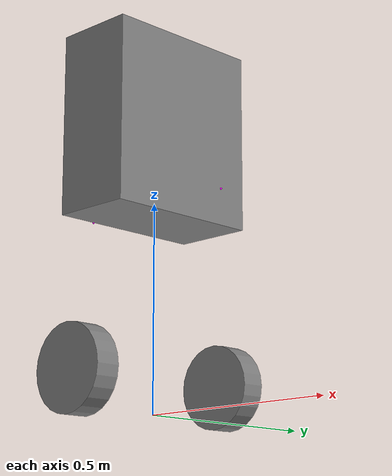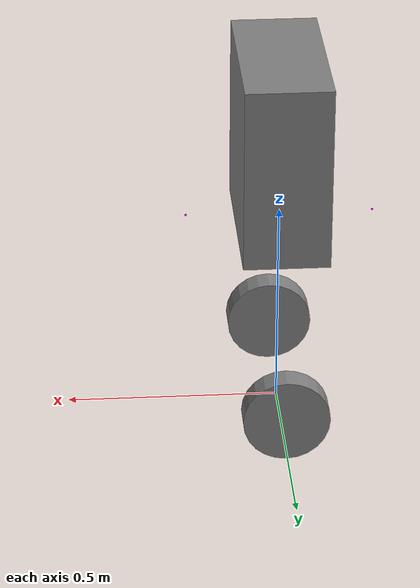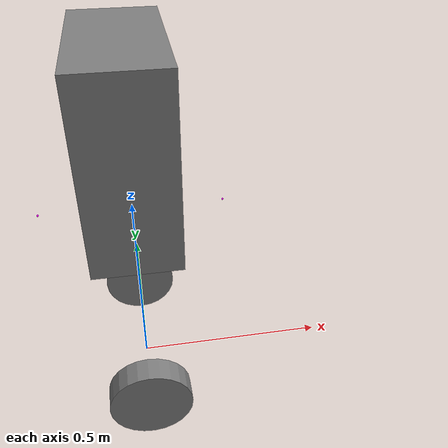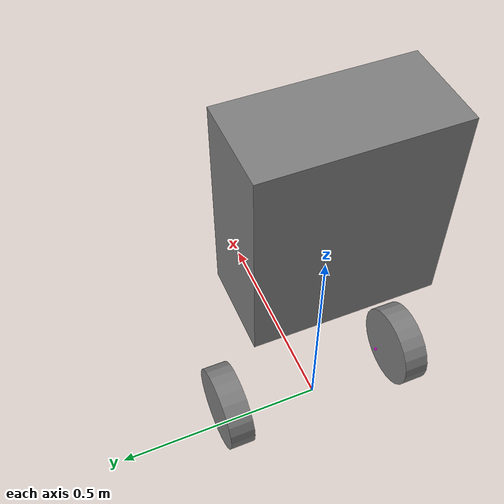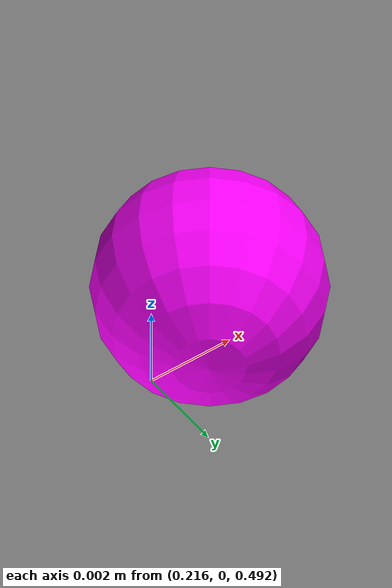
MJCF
<mujoco model="robot">
  <default>
    <default class="robot/"/>
    </default>
  <worldbody>
    <body name="body_chassis_" pos="0 0 0.67390000000000005" euler="0 0 0">
      <camera name="camera_track_chassis_" class="robot/" mode="track" pos="0 -3 1" zaxis="0 -1 0.5"/>
      <geom name="geom_chassis_" class="robot/" type="box" size="0.10000000000000001 0.20000000000000001 0.22" mass="7.5"/>
      <site name="right_site_chassis_" class="robot/" size="9.9999999999999995e-07 9.9999999999999995e-07 9.9999999999999995e-07" pos="0 -0.20000000000000001 -0.59140000000000004"/>
      <body pos="0 -0.20000000000000001 -0.59140000000000004" name="right_tire/">
        <body name="right_tire/body_tire_right">
          <geom name="right_tire/geom_tire_right" class="robot/" type="cylinder" condim="6" priority="1" size="0.1016 0.029999999999999999" friction="0.25 0.0050000000000000001 0.0001" mass="0.34999999999999998" pos="0 -0.029999999999999999 0" euler="90 0 0"/>
          <joint name="right_tire/joint_tire_right" class="robot/" type="hinge" axis="0 1 0" damping="0.25"/>
        </body>
      </body>
      <site name="left_site_chassis_" class="robot/" size="9.9999999999999995e-07 9.9999999999999995e-07 9.9999999999999995e-07" pos="0 0.20000000000000001 -0.59140000000000004" euler="0 0 180"/>
      <body pos="0 0.20000000000000001 -0.59140000000000004" euler="0 0 180" name="left_tire/">
        <body name="left_tire/body_tire_left">
          <geom name="left_tire/geom_tire_left" class="robot/" type="cylinder" condim="6" priority="1" size="0.1016 0.029999999999999999" friction="0.25 0.0050000000000000001 0.0001" mass="0.34999999999999998" pos="0 -0.029999999999999999 0" euler="90 0 0"/>
          <joint name="left_tire/joint_tire_left" class="robot/" type="hinge" axis="0 1 0" damping="0.25"/>
        </body>
      </body>
      <inertial pos="0 0 0" mass="7.5" diaginertia="0.087800000000000003 0.034700000000000002 0.063200000000000006"/>
      <freejoint name="free_floating_chassis_"/>
      <body name="additional_wheel0" pos="0.2175 0 -0.17999999999999999" euler="0 0 0">
        <geom name="geom_aux_wheel0" class="robot/" type="sphere" size="0.0025000000000000001" rgba="100 0 100 1" mass="0.0001"/>
        <joint name="joint_aux_wheel0" class="robot/" type="ball" pos="0 0 0" damping="0"/>
      </body>
      <body name="additional_wheel1" pos="-0.2175 0 -0.17999999999999999" euler="0 0 0">
        <geom name="geom_aux_wheel1" class="robot/" type="sphere" size="0.0025000000000000001" rgba="100 0 100 1" mass="0.0001"/>
        <joint name="joint_aux_wheel1" class="robot/" type="ball" pos="0 0 0" damping="0"/>
      </body>
      <site name="imu" class="robot/" size="9.9999999999999995e-07 9.9999999999999995e-07 9.9999999999999995e-07" pos="0 0 0"/>
    </body>
    <light name="spotlight_0" class="robot/" mode="targetbodycom" target="body_chassis_" pos="0.11 0.21000000000000002 0.23000000000000001"/>
    <light name="spotlight_1" class="robot/" mode="targetbodycom" target="body_chassis_" pos="0.11 -0.21000000000000002 0.23000000000000001"/>
    <light name="spotlight_2" class="robot/" mode="targetbodycom" target="body_chassis_" pos="-0.11 0.21000000000000002 0.23000000000000001"/>
    <light name="spotlight_3" class="robot/" mode="targetbodycom" target="body_chassis_" pos="-0.11 -0.21000000000000002 0.23000000000000001"/>
  </worldbody>
  <actuator>
    <motor name="left_tire/act" class="robot/" ctrllimited="true" ctrlrange="-5 5" joint="left_tire/joint_tire_left"/>
    <motor name="right_tire/act" class="robot/" ctrllimited="true" ctrlrange="-5 5" joint="right_tire/joint_tire_right"/>
  </actuator>
  <sensor>
    <gyro name="_gyro" site="imu"/>
    <accelerometer name="_accelerometer" site="imu"/>
    <magnetometer name="_magnetometer" site="imu"/>
    <framequat name="_orientation" objtype="site" objname="imu"/>
    <jointpos name="left_tire/pos" noise="0.080000000000000002" joint="left_tire/joint_tire_left"/>
    <jointvel name="left_tire/vel" noise="0.080000000000000002" joint="left_tire/joint_tire_left"/>
    <jointpos name="right_tire/pos" noise="0.080000000000000002" joint="right_tire/joint_tire_right"/>
    <jointvel name="right_tire/vel" noise="0.080000000000000002" joint="right_tire/joint_tire_right"/>
  </sensor>
</mujoco>
